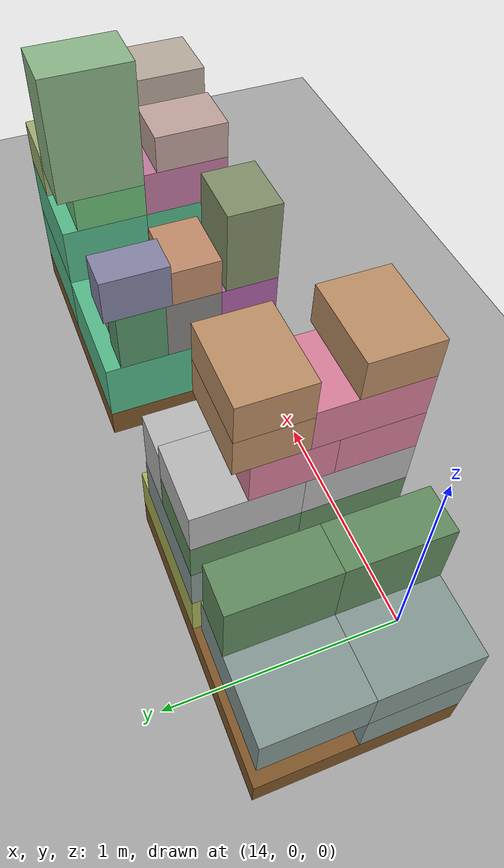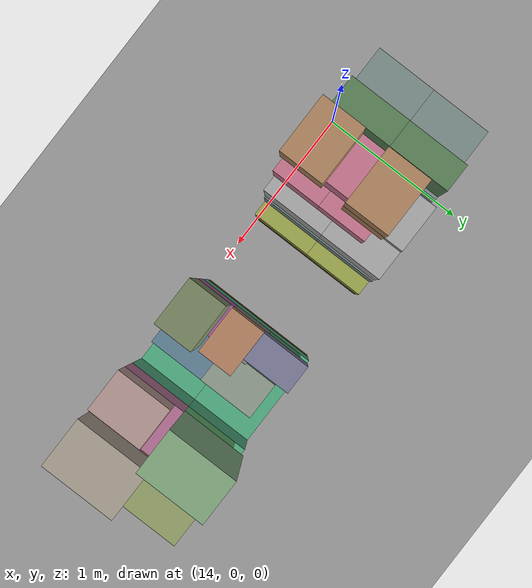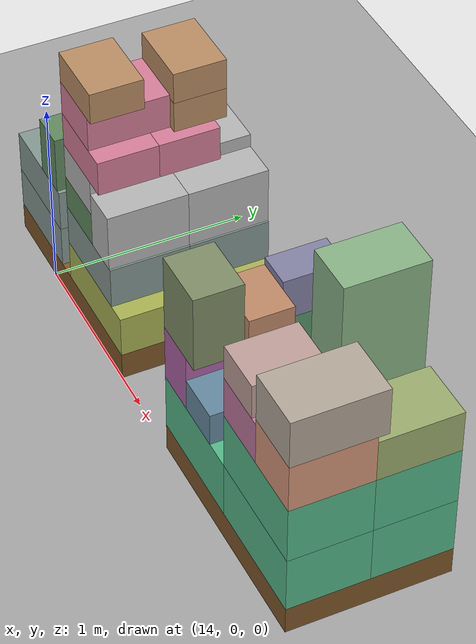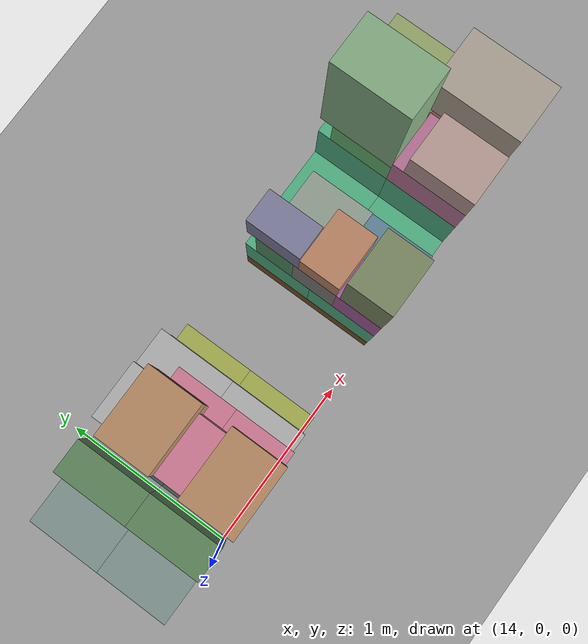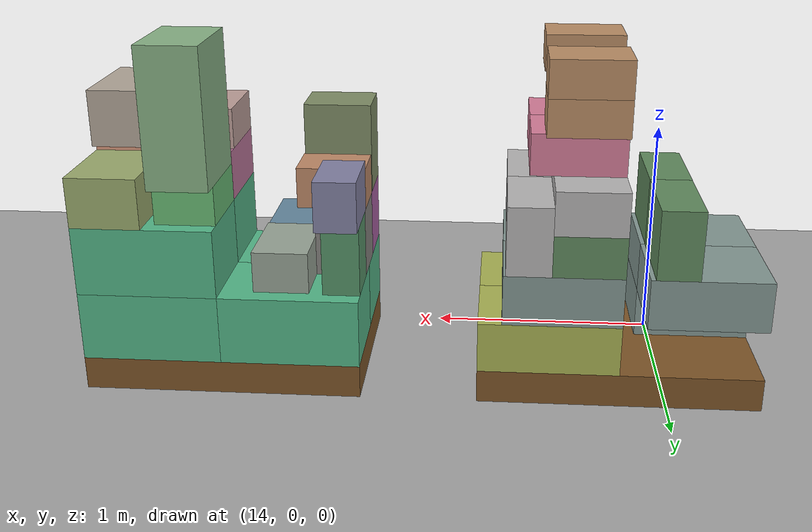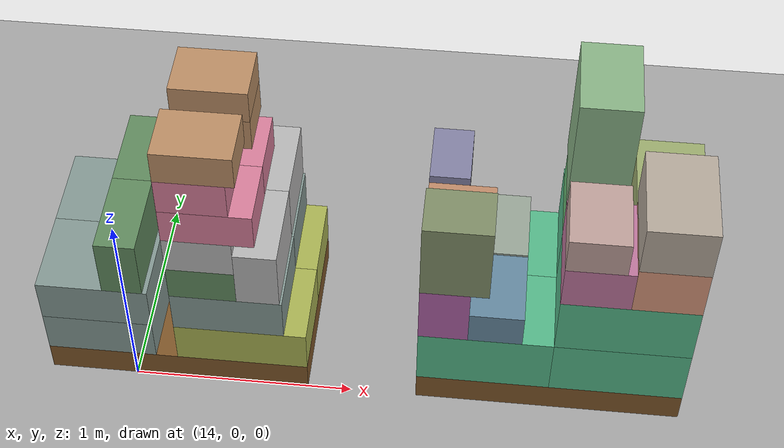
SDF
<sdf version="1.10">
 <world name="pallet_towers">
  <model name="ground_plane">
   <static>true</static>
   <link name="link">
    <collision name="collision">
     <geometry><plane><normal>0 0 1</normal><size>30 30</size></plane></geometry>
     <surface>
      <friction><ode><mu>0.35</mu><mu2>0.35</mu2></ode></friction>
      <bounce><restitution_coefficient>0</restitution_coefficient><threshold>100000</threshold></bounce>
      <contact><ode><kp>1000000</kp><kd>100</kd><max_vel>1</max_vel><min_depth>0.0005</min_depth></ode></contact>
     </surface>
    </collision>
    <visual name="visual">
     <geometry><plane><normal>0 0 1</normal><size>30 30</size></plane></geometry>
     <material><ambient>0.65 0.65 0.65 1</ambient><diffuse>0.65 0.65 0.65 1</diffuse></material>
    </visual>
   </link>
  </model>
  <model name="pallet_09_9">
   <static>false</static>
   <pose>14.2 0.4 0.072 0 0 0</pose>
   <link name="body">
    <inertial>
     <mass>25</mass>
     <inertia>
      <ixx>1.37653333</ixx>
      <ixy>0</ixy>
      <ixz>0</ixz>
      <iyy>3.0432</iyy>
      <iyz>0</iyz>
      <izz>4.33333333</izz>
     </inertia>
    </inertial>
    <collision name="collision">
     <geometry><box><size>1.2 0.8 0.144</size></box></geometry>
     <surface>
      <friction><ode><mu>0.35</mu><mu2>0.35</mu2></ode></friction>
      <bounce><restitution_coefficient>0</restitution_coefficient><threshold>100000</threshold></bounce>
      <contact><ode><kp>1000000</kp><kd>100</kd><max_vel>1</max_vel><min_depth>0.0005</min_depth></ode></contact>
     </surface>
    </collision>
    <visual name="visual">
     <geometry><box><size>1.2 0.8 0.144</size></box></geometry>
     <material>
      <ambient>0.5 0.34 0.16 1</ambient>
      <diffuse>0.5 0.34 0.16 1</diffuse>
      <specular>0.05 0.05 0.05 1</specular>
     </material>
    </visual>
   </link>
  </model>
  <model name="box_p09_0001_ORANGE_005_ORANGE">
   <static>false</static>
   <pose>14.5 0.6 0.254 0 0 0</pose>
   <link name="body">
    <inertial>
     <mass>13</mass>
     <inertia>
      <ixx>0.225766667</ixx>
      <ixy>0</ixy>
      <ixz>0</ixz>
      <iyy>0.442433333</iyy>
      <iyz>0</iyz>
      <izz>0.563333333</izz>
     </inertia>
    </inertial>
    <collision name="collision">
     <geometry><box><size>0.6 0.4 0.22</size></box></geometry>
     <surface>
      <friction><ode><mu>0.35</mu><mu2>0.35</mu2></ode></friction>
      <bounce><restitution_coefficient>0</restitution_coefficient><threshold>100000</threshold></bounce>
      <contact><ode><kp>1000000</kp><kd>100</kd><max_vel>1</max_vel><min_depth>0.0005</min_depth></ode></contact>
     </surface>
    </collision>
    <visual name="visual">
     <geometry><box><size>0.6 0.4 0.22</size></box></geometry>
     <material>
      <ambient>0.670588235 0.705882353 0.329411765 1</ambient>
      <diffuse>0.670588235 0.705882353 0.329411765 1</diffuse>
      <specular>0.05 0.05 0.05 1</specular>
     </material>
    </visual>
   </link>
  </model>
  <model name="box_p09_0002_ORANGE_006_ORANGE">
   <static>false</static>
   <pose>14.5 0.2 0.254 0 0 0</pose>
   <link name="body">
    <inertial>
     <mass>13</mass>
     <inertia>
      <ixx>0.225766667</ixx>
      <ixy>0</ixy>
      <ixz>0</ixz>
      <iyy>0.442433333</iyy>
      <iyz>0</iyz>
      <izz>0.563333333</izz>
     </inertia>
    </inertial>
    <collision name="collision">
     <geometry><box><size>0.6 0.4 0.22</size></box></geometry>
     <surface>
      <friction><ode><mu>0.35</mu><mu2>0.35</mu2></ode></friction>
      <bounce><restitution_coefficient>0</restitution_coefficient><threshold>100000</threshold></bounce>
      <contact><ode><kp>1000000</kp><kd>100</kd><max_vel>1</max_vel><min_depth>0.0005</min_depth></ode></contact>
     </surface>
    </collision>
    <visual name="visual">
     <geometry><box><size>0.6 0.4 0.22</size></box></geometry>
     <material>
      <ambient>0.670588235 0.705882353 0.329411765 1</ambient>
      <diffuse>0.670588235 0.705882353 0.329411765 1</diffuse>
      <specular>0.05 0.05 0.05 1</specular>
     </material>
    </visual>
   </link>
  </model>
  <model name="box_p09_0004_PEAR_002_PEAR">
   <static>false</static>
   <pose>13.85 0.2 0.254 0 0 0</pose>
   <link name="body">
    <inertial>
     <mass>11</mass>
     <inertia>
      <ixx>0.191033333</ixx>
      <ixy>0</ixy>
      <ixz>0</ixz>
      <iyy>0.273533333</iyy>
      <iyz>0</iyz>
      <izz>0.375833333</izz>
     </inertia>
    </inertial>
    <collision name="collision">
     <geometry><box><size>0.5 0.4 0.22</size></box></geometry>
     <surface>
      <friction><ode><mu>0.35</mu><mu2>0.35</mu2></ode></friction>
      <bounce><restitution_coefficient>0</restitution_coefficient><threshold>100000</threshold></bounce>
      <contact><ode><kp>1000000</kp><kd>100</kd><max_vel>1</max_vel><min_depth>0.0005</min_depth></ode></contact>
     </surface>
    </collision>
    <visual name="visual">
     <geometry><box><size>0.5 0.4 0.22</size></box></geometry>
     <material>
      <ambient>0.521568627 0.6 0.580392157 1</ambient>
      <diffuse>0.521568627 0.6 0.580392157 1</diffuse>
      <specular>0.05 0.05 0.05 1</specular>
     </material>
    </visual>
   </link>
  </model>
  <model name="box_p09_0005_PEAR_003_PEAR">
   <static>false</static>
   <pose>14.45 0.2 0.474 0 0 0</pose>
   <link name="body">
    <inertial>
     <mass>11</mass>
     <inertia>
      <ixx>0.191033333</ixx>
      <ixy>0</ixy>
      <ixz>0</ixz>
      <iyy>0.273533333</iyy>
      <iyz>0</iyz>
      <izz>0.375833333</izz>
     </inertia>
    </inertial>
    <collision name="collision">
     <geometry><box><size>0.5 0.4 0.22</size></box></geometry>
     <surface>
      <friction><ode><mu>0.35</mu><mu2>0.35</mu2></ode></friction>
      <bounce><restitution_coefficient>0</restitution_coefficient><threshold>100000</threshold></bounce>
      <contact><ode><kp>1000000</kp><kd>100</kd><max_vel>1</max_vel><min_depth>0.0005</min_depth></ode></contact>
     </surface>
    </collision>
    <visual name="visual">
     <geometry><box><size>0.5 0.4 0.22</size></box></geometry>
     <material>
      <ambient>0.521568627 0.6 0.580392157 1</ambient>
      <diffuse>0.521568627 0.6 0.580392157 1</diffuse>
      <specular>0.05 0.05 0.05 1</specular>
     </material>
    </visual>
   </link>
  </model>
  <model name="box_p09_0006_PEAR_004_PEAR">
   <static>false</static>
   <pose>14.45 0.6 0.474 0 0 0</pose>
   <link name="body">
    <inertial>
     <mass>11</mass>
     <inertia>
      <ixx>0.191033333</ixx>
      <ixy>0</ixy>
      <ixz>0</ixz>
      <iyy>0.273533333</iyy>
      <iyz>0</iyz>
      <izz>0.375833333</izz>
     </inertia>
    </inertial>
    <collision name="collision">
     <geometry><box><size>0.5 0.4 0.22</size></box></geometry>
     <surface>
      <friction><ode><mu>0.35</mu><mu2>0.35</mu2></ode></friction>
      <bounce><restitution_coefficient>0</restitution_coefficient><threshold>100000</threshold></bounce>
      <contact><ode><kp>1000000</kp><kd>100</kd><max_vel>1</max_vel><min_depth>0.0005</min_depth></ode></contact>
     </surface>
    </collision>
    <visual name="visual">
     <geometry><box><size>0.5 0.4 0.22</size></box></geometry>
     <material>
      <ambient>0.521568627 0.6 0.580392157 1</ambient>
      <diffuse>0.521568627 0.6 0.580392157 1</diffuse>
      <specular>0.05 0.05 0.05 1</specular>
     </material>
    </visual>
   </link>
  </model>
  <model name="box_p09_0007_PEAR_005_PEAR">
   <static>false</static>
   <pose>13.85 0.6 0.474 0 0 0</pose>
   <link name="body">
    <inertial>
     <mass>11</mass>
     <inertia>
      <ixx>0.191033333</ixx>
      <ixy>0</ixy>
      <ixz>0</ixz>
      <iyy>0.273533333</iyy>
      <iyz>0</iyz>
      <izz>0.375833333</izz>
     </inertia>
    </inertial>
    <collision name="collision">
     <geometry><box><size>0.5 0.4 0.22</size></box></geometry>
     <surface>
      <friction><ode><mu>0.35</mu><mu2>0.35</mu2></ode></friction>
      <bounce><restitution_coefficient>0</restitution_coefficient><threshold>100000</threshold></bounce>
      <contact><ode><kp>1000000</kp><kd>100</kd><max_vel>1</max_vel><min_depth>0.0005</min_depth></ode></contact>
     </surface>
    </collision>
    <visual name="visual">
     <geometry><box><size>0.5 0.4 0.22</size></box></geometry>
     <material>
      <ambient>0.521568627 0.6 0.580392157 1</ambient>
      <diffuse>0.521568627 0.6 0.580392157 1</diffuse>
      <specular>0.05 0.05 0.05 1</specular>
     </material>
    </visual>
   </link>
  </model>
  <model name="box_p09_0008_PEAR_006_PEAR">
   <static>false</static>
   <pose>13.85 0.2 0.474 0 0 0</pose>
   <link name="body">
    <inertial>
     <mass>11</mass>
     <inertia>
      <ixx>0.191033333</ixx>
      <ixy>0</ixy>
      <ixz>0</ixz>
      <iyy>0.273533333</iyy>
      <iyz>0</iyz>
      <izz>0.375833333</izz>
     </inertia>
    </inertial>
    <collision name="collision">
     <geometry><box><size>0.5 0.4 0.22</size></box></geometry>
     <surface>
      <friction><ode><mu>0.35</mu><mu2>0.35</mu2></ode></friction>
      <bounce><restitution_coefficient>0</restitution_coefficient><threshold>100000</threshold></bounce>
      <contact><ode><kp>1000000</kp><kd>100</kd><max_vel>1</max_vel><min_depth>0.0005</min_depth></ode></contact>
     </surface>
    </collision>
    <visual name="visual">
     <geometry><box><size>0.5 0.4 0.22</size></box></geometry>
     <material>
      <ambient>0.521568627 0.6 0.580392157 1</ambient>
      <diffuse>0.521568627 0.6 0.580392157 1</diffuse>
      <specular>0.05 0.05 0.05 1</specular>
     </material>
    </visual>
   </link>
  </model>
  <model name="box_p09_0009_AVOCADO_001_AVOCADO">
   <static>false</static>
   <pose>14.35 0.6 0.674 0 0 0</pose>
   <link name="body">
    <inertial>
     <mass>6.5</mass>
     <inertia>
      <ixx>0.104216667</ixx>
      <ixy>0</ixy>
      <ixz>0</ixz>
      <iyy>0.0663</iyy>
      <iyz>0</iyz>
      <izz>0.135416667</izz>
     </inertia>
    </inertial>
    <collision name="collision">
     <geometry><box><size>0.3 0.4 0.18</size></box></geometry>
     <surface>
      <friction><ode><mu>0.35</mu><mu2>0.35</mu2></ode></friction>
      <bounce><restitution_coefficient>0</restitution_coefficient><threshold>100000</threshold></bounce>
      <contact><ode><kp>1000000</kp><kd>100</kd><max_vel>1</max_vel><min_depth>0.0005</min_depth></ode></contact>
     </surface>
    </collision>
    <visual name="visual">
     <geometry><box><size>0.3 0.4 0.18</size></box></geometry>
     <material>
      <ambient>0.380392157 0.545098039 0.37254902 1</ambient>
      <diffuse>0.380392157 0.545098039 0.37254902 1</diffuse>
      <specular>0.05 0.05 0.05 1</specular>
     </material>
    </visual>
   </link>
  </model>
  <model name="box_p09_0010_AVOCADO_002_AVOCADO">
   <static>false</static>
   <pose>14.35 0.2 0.674 0 0 0</pose>
   <link name="body">
    <inertial>
     <mass>6.5</mass>
     <inertia>
      <ixx>0.104216667</ixx>
      <ixy>0</ixy>
      <ixz>0</ixz>
      <iyy>0.0663</iyy>
      <iyz>0</iyz>
      <izz>0.135416667</izz>
     </inertia>
    </inertial>
    <collision name="collision">
     <geometry><box><size>0.3 0.4 0.18</size></box></geometry>
     <surface>
      <friction><ode><mu>0.35</mu><mu2>0.35</mu2></ode></friction>
      <bounce><restitution_coefficient>0</restitution_coefficient><threshold>100000</threshold></bounce>
      <contact><ode><kp>1000000</kp><kd>100</kd><max_vel>1</max_vel><min_depth>0.0005</min_depth></ode></contact>
     </surface>
    </collision>
    <visual name="visual">
     <geometry><box><size>0.3 0.4 0.18</size></box></geometry>
     <material>
      <ambient>0.380392157 0.545098039 0.37254902 1</ambient>
      <diffuse>0.380392157 0.545098039 0.37254902 1</diffuse>
      <specular>0.05 0.05 0.05 1</specular>
     </material>
    </visual>
   </link>
  </model>
  <model name="box_p09_0013_AVOCADO_005_AVOCADO">
   <static>false</static>
   <pose>13.99 0.2 0.734 0 0 0</pose>
   <link name="body">
    <inertial>
     <mass>6.5</mass>
     <inertia>
      <ixx>0.135416667</ixx>
      <ixy>0</ixy>
      <ixz>0</ixz>
      <iyy>0.0663</iyy>
      <iyz>0</iyz>
      <izz>0.104216667</izz>
     </inertia>
    </inertial>
    <collision name="collision">
     <geometry><box><size>0.18 0.4 0.3</size></box></geometry>
     <surface>
      <friction><ode><mu>0.35</mu><mu2>0.35</mu2></ode></friction>
      <bounce><restitution_coefficient>0</restitution_coefficient><threshold>100000</threshold></bounce>
      <contact><ode><kp>1000000</kp><kd>100</kd><max_vel>1</max_vel><min_depth>0.0005</min_depth></ode></contact>
     </surface>
    </collision>
    <visual name="visual">
     <geometry><box><size>0.18 0.4 0.3</size></box></geometry>
     <material>
      <ambient>0.380392157 0.545098039 0.37254902 1</ambient>
      <diffuse>0.380392157 0.545098039 0.37254902 1</diffuse>
      <specular>0.05 0.05 0.05 1</specular>
     </material>
    </visual>
   </link>
  </model>
  <model name="box_p09_0014_AVOCADO_006_AVOCADO">
   <static>false</static>
   <pose>13.99 0.6 0.734 0 0 0</pose>
   <link name="body">
    <inertial>
     <mass>6.5</mass>
     <inertia>
      <ixx>0.135416667</ixx>
      <ixy>0</ixy>
      <ixz>0</ixz>
      <iyy>0.0663</iyy>
      <iyz>0</iyz>
      <izz>0.104216667</izz>
     </inertia>
    </inertial>
    <collision name="collision">
     <geometry><box><size>0.18 0.4 0.3</size></box></geometry>
     <surface>
      <friction><ode><mu>0.35</mu><mu2>0.35</mu2></ode></friction>
      <bounce><restitution_coefficient>0</restitution_coefficient><threshold>100000</threshold></bounce>
      <contact><ode><kp>1000000</kp><kd>100</kd><max_vel>1</max_vel><min_depth>0.0005</min_depth></ode></contact>
     </surface>
    </collision>
    <visual name="visual">
     <geometry><box><size>0.18 0.4 0.3</size></box></geometry>
     <material>
      <ambient>0.380392157 0.545098039 0.37254902 1</ambient>
      <diffuse>0.380392157 0.545098039 0.37254902 1</diffuse>
      <specular>0.05 0.05 0.05 1</specular>
     </material>
    </visual>
   </link>
  </model>
  <model name="box_p09_0015_SOUP_001_SOUP">
   <static>false</static>
   <pose>14.595 0.6 0.734 0 0 0</pose>
   <link name="body">
    <inertial>
     <mass>12</mass>
     <inertia><ixx>0.25</ixx><ixy>0</ixy><ixz>0</ixz><iyy>0.1261</iyy><iyz>0</iyz><izz>0.1961</izz></inertia>
    </inertial>
    <collision name="collision">
     <geometry><box><size>0.19 0.4 0.3</size></box></geometry>
     <surface>
      <friction><ode><mu>0.35</mu><mu2>0.35</mu2></ode></friction>
      <bounce><restitution_coefficient>0</restitution_coefficient><threshold>100000</threshold></bounce>
      <contact><ode><kp>1000000</kp><kd>100</kd><max_vel>1</max_vel><min_depth>0.0005</min_depth></ode></contact>
     </surface>
    </collision>
    <visual name="visual">
     <geometry><box><size>0.19 0.4 0.3</size></box></geometry>
     <material>
      <ambient>0.721568627 0.717647059 0.717647059 1</ambient>
      <diffuse>0.721568627 0.717647059 0.717647059 1</diffuse>
      <specular>0.05 0.05 0.05 1</specular>
     </material>
    </visual>
   </link>
  </model>
  <model name="box_p09_0016_SOUP_002_SOUP">
   <static>false</static>
   <pose>14.595 0.2 0.734 0 0 0</pose>
   <link name="body">
    <inertial>
     <mass>12</mass>
     <inertia><ixx>0.25</ixx><ixy>0</ixy><ixz>0</ixz><iyy>0.1261</iyy><iyz>0</iyz><izz>0.1961</izz></inertia>
    </inertial>
    <collision name="collision">
     <geometry><box><size>0.19 0.4 0.3</size></box></geometry>
     <surface>
      <friction><ode><mu>0.35</mu><mu2>0.35</mu2></ode></friction>
      <bounce><restitution_coefficient>0</restitution_coefficient><threshold>100000</threshold></bounce>
      <contact><ode><kp>1000000</kp><kd>100</kd><max_vel>1</max_vel><min_depth>0.0005</min_depth></ode></contact>
     </surface>
    </collision>
    <visual name="visual">
     <geometry><box><size>0.19 0.4 0.3</size></box></geometry>
     <material>
      <ambient>0.721568627 0.717647059 0.717647059 1</ambient>
      <diffuse>0.721568627 0.717647059 0.717647059 1</diffuse>
      <specular>0.05 0.05 0.05 1</specular>
     </material>
    </visual>
   </link>
  </model>
  <model name="box_p09_0017_SOUP_003_SOUP">
   <static>false</static>
   <pose>14.35 0.6 0.859 0 0 0</pose>
   <link name="body">
    <inertial>
     <mass>12</mass>
     <inertia><ixx>0.1961</ixx><ixy>0</ixy><ixz>0</ixz><iyy>0.1261</iyy><iyz>0</iyz><izz>0.25</izz></inertia>
    </inertial>
    <collision name="collision">
     <geometry><box><size>0.3 0.4 0.19</size></box></geometry>
     <surface>
      <friction><ode><mu>0.35</mu><mu2>0.35</mu2></ode></friction>
      <bounce><restitution_coefficient>0</restitution_coefficient><threshold>100000</threshold></bounce>
      <contact><ode><kp>1000000</kp><kd>100</kd><max_vel>1</max_vel><min_depth>0.0005</min_depth></ode></contact>
     </surface>
    </collision>
    <visual name="visual">
     <geometry><box><size>0.3 0.4 0.19</size></box></geometry>
     <material>
      <ambient>0.721568627 0.717647059 0.717647059 1</ambient>
      <diffuse>0.721568627 0.717647059 0.717647059 1</diffuse>
      <specular>0.05 0.05 0.05 1</specular>
     </material>
    </visual>
   </link>
  </model>
  <model name="box_p09_0018_SOUP_004_SOUP">
   <static>false</static>
   <pose>14.35 0.2 0.859 0 0 0</pose>
   <link name="body">
    <inertial>
     <mass>12</mass>
     <inertia><ixx>0.1961</ixx><ixy>0</ixy><ixz>0</ixz><iyy>0.1261</iyy><iyz>0</iyz><izz>0.25</izz></inertia>
    </inertial>
    <collision name="collision">
     <geometry><box><size>0.3 0.4 0.19</size></box></geometry>
     <surface>
      <friction><ode><mu>0.35</mu><mu2>0.35</mu2></ode></friction>
      <bounce><restitution_coefficient>0</restitution_coefficient><threshold>100000</threshold></bounce>
      <contact><ode><kp>1000000</kp><kd>100</kd><max_vel>1</max_vel><min_depth>0.0005</min_depth></ode></contact>
     </surface>
    </collision>
    <visual name="visual">
     <geometry><box><size>0.3 0.4 0.19</size></box></geometry>
     <material>
      <ambient>0.721568627 0.717647059 0.717647059 1</ambient>
      <diffuse>0.721568627 0.717647059 0.717647059 1</diffuse>
      <specular>0.05 0.05 0.05 1</specular>
     </material>
    </visual>
   </link>
  </model>
  <model name="box_p09_0023_BEANS_003_BEANS">
   <static>false</static>
   <pose>14.4 0.15 1.044 0 0 0</pose>
   <link name="body">
    <inertial>
     <mass>11</mass>
     <inertia>
      <ixx>0.1122</ixx>
      <ixy>0</ixy>
      <ixz>0</ixz>
      <iyy>0.176366667</iyy>
      <iyz>0</iyz>
      <izz>0.229166667</izz>
     </inertia>
    </inertial>
    <collision name="collision">
     <geometry><box><size>0.4 0.3 0.18</size></box></geometry>
     <surface>
      <friction><ode><mu>0.35</mu><mu2>0.35</mu2></ode></friction>
      <bounce><restitution_coefficient>0</restitution_coefficient><threshold>100000</threshold></bounce>
      <contact><ode><kp>1000000</kp><kd>100</kd><max_vel>1</max_vel><min_depth>0.0005</min_depth></ode></contact>
     </surface>
    </collision>
    <visual name="visual">
     <geometry><box><size>0.4 0.3 0.18</size></box></geometry>
     <material>
      <ambient>0.847058824 0.498039216 0.607843137 1</ambient>
      <diffuse>0.847058824 0.498039216 0.607843137 1</diffuse>
      <specular>0.05 0.05 0.05 1</specular>
     </material>
    </visual>
   </link>
  </model>
  <model name="box_p09_0024_BEANS_004_BEANS">
   <static>false</static>
   <pose>14.4 0.45 1.044 0 0 0</pose>
   <link name="body">
    <inertial>
     <mass>11</mass>
     <inertia>
      <ixx>0.1122</ixx>
      <ixy>0</ixy>
      <ixz>0</ixz>
      <iyy>0.176366667</iyy>
      <iyz>0</iyz>
      <izz>0.229166667</izz>
     </inertia>
    </inertial>
    <collision name="collision">
     <geometry><box><size>0.4 0.3 0.18</size></box></geometry>
     <surface>
      <friction><ode><mu>0.35</mu><mu2>0.35</mu2></ode></friction>
      <bounce><restitution_coefficient>0</restitution_coefficient><threshold>100000</threshold></bounce>
      <contact><ode><kp>1000000</kp><kd>100</kd><max_vel>1</max_vel><min_depth>0.0005</min_depth></ode></contact>
     </surface>
    </collision>
    <visual name="visual">
     <geometry><box><size>0.4 0.3 0.18</size></box></geometry>
     <material>
      <ambient>0.847058824 0.498039216 0.607843137 1</ambient>
      <diffuse>0.847058824 0.498039216 0.607843137 1</diffuse>
      <specular>0.05 0.05 0.05 1</specular>
     </material>
    </visual>
   </link>
  </model>
  <model name="box_p09_0026_BEANS_006_BEANS">
   <static>false</static>
   <pose>14.35 0.2 1.224 0 0 0</pose>
   <link name="body">
    <inertial>
     <mass>11</mass>
     <inertia>
      <ixx>0.176366667</ixx>
      <ixy>0</ixy>
      <ixz>0</ixz>
      <iyy>0.1122</iyy>
      <iyz>0</iyz>
      <izz>0.229166667</izz>
     </inertia>
    </inertial>
    <collision name="collision">
     <geometry><box><size>0.3 0.4 0.18</size></box></geometry>
     <surface>
      <friction><ode><mu>0.35</mu><mu2>0.35</mu2></ode></friction>
      <bounce><restitution_coefficient>0</restitution_coefficient><threshold>100000</threshold></bounce>
      <contact><ode><kp>1000000</kp><kd>100</kd><max_vel>1</max_vel><min_depth>0.0005</min_depth></ode></contact>
     </surface>
    </collision>
    <visual name="visual">
     <geometry><box><size>0.3 0.4 0.18</size></box></geometry>
     <material>
      <ambient>0.847058824 0.498039216 0.607843137 1</ambient>
      <diffuse>0.847058824 0.498039216 0.607843137 1</diffuse>
      <specular>0.05 0.05 0.05 1</specular>
     </material>
    </visual>
   </link>
  </model>
  <model name="box_p09_0027_TUNA_001_TUNA">
   <static>false</static>
   <pose>14.37 0.53 1.214 0 0 0</pose>
   <link name="body">
    <inertial>
     <mass>10</mass>
     <inertia>
      <ixx>0.0776666667</ixx>
      <ixy>0</ixy>
      <ixz>0</ixz>
      <iyy>0.117666667</iyy>
      <iyz>0</iyz>
      <izz>0.152666667</izz>
     </inertia>
    </inertial>
    <collision name="collision">
     <geometry><box><size>0.34 0.26 0.16</size></box></geometry>
     <surface>
      <friction><ode><mu>0.35</mu><mu2>0.35</mu2></ode></friction>
      <bounce><restitution_coefficient>0</restitution_coefficient><threshold>100000</threshold></bounce>
      <contact><ode><kp>1000000</kp><kd>100</kd><max_vel>1</max_vel><min_depth>0.0005</min_depth></ode></contact>
     </surface>
    </collision>
    <visual name="visual">
     <geometry><box><size>0.34 0.26 0.16</size></box></geometry>
     <material>
      <ambient>0.737254902 0.560784314 0.4 1</ambient>
      <diffuse>0.737254902 0.560784314 0.4 1</diffuse>
      <specular>0.05 0.05 0.05 1</specular>
     </material>
    </visual>
   </link>
  </model>
  <model name="box_p09_0029_TUNA_003_TUNA">
   <static>false</static>
   <pose>14.37 0.53 1.374 0 0 0</pose>
   <link name="body">
    <inertial>
     <mass>10</mass>
     <inertia>
      <ixx>0.0776666667</ixx>
      <ixy>0</ixy>
      <ixz>0</ixz>
      <iyy>0.117666667</iyy>
      <iyz>0</iyz>
      <izz>0.152666667</izz>
     </inertia>
    </inertial>
    <collision name="collision">
     <geometry><box><size>0.34 0.26 0.16</size></box></geometry>
     <surface>
      <friction><ode><mu>0.35</mu><mu2>0.35</mu2></ode></friction>
      <bounce><restitution_coefficient>0</restitution_coefficient><threshold>100000</threshold></bounce>
      <contact><ode><kp>1000000</kp><kd>100</kd><max_vel>1</max_vel><min_depth>0.0005</min_depth></ode></contact>
     </surface>
    </collision>
    <visual name="visual">
     <geometry><box><size>0.34 0.26 0.16</size></box></geometry>
     <material>
      <ambient>0.737254902 0.560784314 0.4 1</ambient>
      <diffuse>0.737254902 0.560784314 0.4 1</diffuse>
      <specular>0.05 0.05 0.05 1</specular>
     </material>
    </visual>
   </link>
  </model>
  <model name="box_p09_0032_TUNA_006_TUNA">
   <static>false</static>
   <pose>14.37 0.13 1.394 0 0 0</pose>
   <link name="body">
    <inertial>
     <mass>10</mass>
     <inertia>
      <ixx>0.0776666667</ixx>
      <ixy>0</ixy>
      <ixz>0</ixz>
      <iyy>0.117666667</iyy>
      <iyz>0</iyz>
      <izz>0.152666667</izz>
     </inertia>
    </inertial>
    <collision name="collision">
     <geometry><box><size>0.34 0.26 0.16</size></box></geometry>
     <surface>
      <friction><ode><mu>0.35</mu><mu2>0.35</mu2></ode></friction>
      <bounce><restitution_coefficient>0</restitution_coefficient><threshold>100000</threshold></bounce>
      <contact><ode><kp>1000000</kp><kd>100</kd><max_vel>1</max_vel><min_depth>0.0005</min_depth></ode></contact>
     </surface>
    </collision>
    <visual name="visual">
     <geometry><box><size>0.34 0.26 0.16</size></box></geometry>
     <material>
      <ambient>0.737254902 0.560784314 0.4 1</ambient>
      <diffuse>0.737254902 0.560784314 0.4 1</diffuse>
      <specular>0.05 0.05 0.05 1</specular>
     </material>
    </visual>
   </link>
  </model>
  <model name="pallet_10_10">
   <static>false</static>
   <pose>15.9 0.4 0.072 0 0 0</pose>
   <link name="body">
    <inertial>
     <mass>25</mass>
     <inertia>
      <ixx>1.37653333</ixx>
      <ixy>0</ixy>
      <ixz>0</ixz>
      <iyy>3.0432</iyy>
      <iyz>0</iyz>
      <izz>4.33333333</izz>
     </inertia>
    </inertial>
    <collision name="collision">
     <geometry><box><size>1.2 0.8 0.144</size></box></geometry>
     <surface>
      <friction><ode><mu>0.35</mu><mu2>0.35</mu2></ode></friction>
      <bounce><restitution_coefficient>0</restitution_coefficient><threshold>100000</threshold></bounce>
      <contact><ode><kp>1000000</kp><kd>100</kd><max_vel>1</max_vel><min_depth>0.0005</min_depth></ode></contact>
     </surface>
    </collision>
    <visual name="visual">
     <geometry><box><size>1.2 0.8 0.144</size></box></geometry>
     <material>
      <ambient>0.5 0.34 0.16 1</ambient>
      <diffuse>0.5 0.34 0.16 1</diffuse>
      <specular>0.05 0.05 0.05 1</specular>
     </material>
    </visual>
   </link>
  </model>
  <model name="box_p10_0001_PAPER_001_PAPER">
   <static>false</static>
   <pose>16.2 0.6 0.294 0 0 0</pose>
   <link name="body">
    <inertial>
     <mass>5.5</mass>
     <inertia>
      <ixx>0.114583333</ixx>
      <ixy>0</ixy>
      <ixz>0</ixz>
      <iyy>0.20625</iyy>
      <iyz>0</iyz>
      <izz>0.238333333</izz>
     </inertia>
    </inertial>
    <collision name="collision">
     <geometry><box><size>0.6 0.4 0.3</size></box></geometry>
     <surface>
      <friction><ode><mu>0.35</mu><mu2>0.35</mu2></ode></friction>
      <bounce><restitution_coefficient>0</restitution_coefficient><threshold>100000</threshold></bounce>
      <contact><ode><kp>1000000</kp><kd>100</kd><max_vel>1</max_vel><min_depth>0.0005</min_depth></ode></contact>
     </surface>
    </collision>
    <visual name="visual">
     <geometry><box><size>0.6 0.4 0.3</size></box></geometry>
     <material>
      <ambient>0.333333333 0.725490196 0.541176471 1</ambient>
      <diffuse>0.333333333 0.725490196 0.541176471 1</diffuse>
      <specular>0.05 0.05 0.05 1</specular>
     </material>
    </visual>
   </link>
  </model>
  <model name="box_p10_0002_PAPER_002_PAPER">
   <static>false</static>
   <pose>16.2 0.2 0.294 0 0 0</pose>
   <link name="body">
    <inertial>
     <mass>5.5</mass>
     <inertia>
      <ixx>0.114583333</ixx>
      <ixy>0</ixy>
      <ixz>0</ixz>
      <iyy>0.20625</iyy>
      <iyz>0</iyz>
      <izz>0.238333333</izz>
     </inertia>
    </inertial>
    <collision name="collision">
     <geometry><box><size>0.6 0.4 0.3</size></box></geometry>
     <surface>
      <friction><ode><mu>0.35</mu><mu2>0.35</mu2></ode></friction>
      <bounce><restitution_coefficient>0</restitution_coefficient><threshold>100000</threshold></bounce>
      <contact><ode><kp>1000000</kp><kd>100</kd><max_vel>1</max_vel><min_depth>0.0005</min_depth></ode></contact>
     </surface>
    </collision>
    <visual name="visual">
     <geometry><box><size>0.6 0.4 0.3</size></box></geometry>
     <material>
      <ambient>0.333333333 0.725490196 0.541176471 1</ambient>
      <diffuse>0.333333333 0.725490196 0.541176471 1</diffuse>
      <specular>0.05 0.05 0.05 1</specular>
     </material>
    </visual>
   </link>
  </model>
  <model name="box_p10_0003_PAPER_003_PAPER">
   <static>false</static>
   <pose>15.6 0.6 0.294 0 0 0</pose>
   <link name="body">
    <inertial>
     <mass>5.5</mass>
     <inertia>
      <ixx>0.114583333</ixx>
      <ixy>0</ixy>
      <ixz>0</ixz>
      <iyy>0.20625</iyy>
      <iyz>0</iyz>
      <izz>0.238333333</izz>
     </inertia>
    </inertial>
    <collision name="collision">
     <geometry><box><size>0.6 0.4 0.3</size></box></geometry>
     <surface>
      <friction><ode><mu>0.35</mu><mu2>0.35</mu2></ode></friction>
      <bounce><restitution_coefficient>0</restitution_coefficient><threshold>100000</threshold></bounce>
      <contact><ode><kp>1000000</kp><kd>100</kd><max_vel>1</max_vel><min_depth>0.0005</min_depth></ode></contact>
     </surface>
    </collision>
    <visual name="visual">
     <geometry><box><size>0.6 0.4 0.3</size></box></geometry>
     <material>
      <ambient>0.333333333 0.725490196 0.541176471 1</ambient>
      <diffuse>0.333333333 0.725490196 0.541176471 1</diffuse>
      <specular>0.05 0.05 0.05 1</specular>
     </material>
    </visual>
   </link>
  </model>
  <model name="box_p10_0004_PAPER_004_PAPER">
   <static>false</static>
   <pose>15.6 0.2 0.294 0 0 0</pose>
   <link name="body">
    <inertial>
     <mass>5.5</mass>
     <inertia>
      <ixx>0.114583333</ixx>
      <ixy>0</ixy>
      <ixz>0</ixz>
      <iyy>0.20625</iyy>
      <iyz>0</iyz>
      <izz>0.238333333</izz>
     </inertia>
    </inertial>
    <collision name="collision">
     <geometry><box><size>0.6 0.4 0.3</size></box></geometry>
     <surface>
      <friction><ode><mu>0.35</mu><mu2>0.35</mu2></ode></friction>
      <bounce><restitution_coefficient>0</restitution_coefficient><threshold>100000</threshold></bounce>
      <contact><ode><kp>1000000</kp><kd>100</kd><max_vel>1</max_vel><min_depth>0.0005</min_depth></ode></contact>
     </surface>
    </collision>
    <visual name="visual">
     <geometry><box><size>0.6 0.4 0.3</size></box></geometry>
     <material>
      <ambient>0.333333333 0.725490196 0.541176471 1</ambient>
      <diffuse>0.333333333 0.725490196 0.541176471 1</diffuse>
      <specular>0.05 0.05 0.05 1</specular>
     </material>
    </visual>
   </link>
  </model>
  <model name="box_p10_0005_PAPER_005_PAPER">
   <static>false</static>
   <pose>16.2 0.2 0.594 0 0 0</pose>
   <link name="body">
    <inertial>
     <mass>5.5</mass>
     <inertia>
      <ixx>0.114583333</ixx>
      <ixy>0</ixy>
      <ixz>0</ixz>
      <iyy>0.20625</iyy>
      <iyz>0</iyz>
      <izz>0.238333333</izz>
     </inertia>
    </inertial>
    <collision name="collision">
     <geometry><box><size>0.6 0.4 0.3</size></box></geometry>
     <surface>
      <friction><ode><mu>0.35</mu><mu2>0.35</mu2></ode></friction>
      <bounce><restitution_coefficient>0</restitution_coefficient><threshold>100000</threshold></bounce>
      <contact><ode><kp>1000000</kp><kd>100</kd><max_vel>1</max_vel><min_depth>0.0005</min_depth></ode></contact>
     </surface>
    </collision>
    <visual name="visual">
     <geometry><box><size>0.6 0.4 0.3</size></box></geometry>
     <material>
      <ambient>0.333333333 0.725490196 0.541176471 1</ambient>
      <diffuse>0.333333333 0.725490196 0.541176471 1</diffuse>
      <specular>0.05 0.05 0.05 1</specular>
     </material>
    </visual>
   </link>
  </model>
  <model name="box_p10_0006_PAPER_006_PAPER">
   <static>false</static>
   <pose>16.2 0.6 0.594 0 0 0</pose>
   <link name="body">
    <inertial>
     <mass>5.5</mass>
     <inertia>
      <ixx>0.114583333</ixx>
      <ixy>0</ixy>
      <ixz>0</ixz>
      <iyy>0.20625</iyy>
      <iyz>0</iyz>
      <izz>0.238333333</izz>
     </inertia>
    </inertial>
    <collision name="collision">
     <geometry><box><size>0.6 0.4 0.3</size></box></geometry>
     <surface>
      <friction><ode><mu>0.35</mu><mu2>0.35</mu2></ode></friction>
      <bounce><restitution_coefficient>0</restitution_coefficient><threshold>100000</threshold></bounce>
      <contact><ode><kp>1000000</kp><kd>100</kd><max_vel>1</max_vel><min_depth>0.0005</min_depth></ode></contact>
     </surface>
    </collision>
    <visual name="visual">
     <geometry><box><size>0.6 0.4 0.3</size></box></geometry>
     <material>
      <ambient>0.333333333 0.725490196 0.541176471 1</ambient>
      <diffuse>0.333333333 0.725490196 0.541176471 1</diffuse>
      <specular>0.05 0.05 0.05 1</specular>
     </material>
    </visual>
   </link>
  </model>
  <model name="box_p10_0007_OLIVEOIL_001_OLIVEOIL">
   <static>false</static>
   <pose>15.41 0.13 0.594 0 0 0</pose>
   <link name="body">
    <inertial>
     <mass>9</mass>
     <inertia><ixx>0.1182</ixx><ixy>0</ixy><ixz>0</ixz><iyy>0.1038</iyy><iyz>0</iyz><izz>0.087</izz></inertia>
    </inertial>
    <collision name="collision">
     <geometry><box><size>0.22 0.26 0.3</size></box></geometry>
     <surface>
      <friction><ode><mu>0.35</mu><mu2>0.35</mu2></ode></friction>
      <bounce><restitution_coefficient>0</restitution_coefficient><threshold>100000</threshold></bounce>
      <contact><ode><kp>1000000</kp><kd>100</kd><max_vel>1</max_vel><min_depth>0.0005</min_depth></ode></contact>
     </surface>
    </collision>
    <visual name="visual">
     <geometry><box><size>0.22 0.26 0.3</size></box></geometry>
     <material>
      <ambient>0.682352941 0.384313725 0.650980392 1</ambient>
      <diffuse>0.682352941 0.384313725 0.650980392 1</diffuse>
      <specular>0.05 0.05 0.05 1</specular>
     </material>
    </visual>
   </link>
  </model>
  <model name="box_p10_0008_VINEGAR_001_VINEGAR">
   <static>false</static>
   <pose>15.41 0.385 0.594 0 0 0</pose>
   <link name="body">
    <inertial>
     <mass>8</mass>
     <inertia>
      <ixx>0.101666667</ixx>
      <ixy>0</ixy>
      <ixz>0</ixz>
      <iyy>0.0922666667</iyy>
      <iyz>0</iyz>
      <izz>0.0739333333</izz>
     </inertia>
    </inertial>
    <collision name="collision">
     <geometry><box><size>0.22 0.25 0.3</size></box></geometry>
     <surface>
      <friction><ode><mu>0.35</mu><mu2>0.35</mu2></ode></friction>
      <bounce><restitution_coefficient>0</restitution_coefficient><threshold>100000</threshold></bounce>
      <contact><ode><kp>1000000</kp><kd>100</kd><max_vel>1</max_vel><min_depth>0.0005</min_depth></ode></contact>
     </surface>
    </collision>
    <visual name="visual">
     <geometry><box><size>0.22 0.25 0.3</size></box></geometry>
     <material>
      <ambient>0.529411765 0.517647059 0.505882353 1</ambient>
      <diffuse>0.529411765 0.517647059 0.505882353 1</diffuse>
      <specular>0.05 0.05 0.05 1</specular>
     </material>
    </visual>
   </link>
  </model>
  <model name="box_p10_0009_MAYO_001_MAYO">
   <static>false</static>
   <pose>15.64 0.18 0.529 0 0 0</pose>
   <link name="body">
    <inertial>
     <mass>7</mass>
     <inertia>
      <ixx>0.0924583333</ixx>
      <ixy>0</ixy>
      <ixz>0</ixz>
      <iyy>0.0504583333</iyy>
      <iyz>0</iyz>
      <izz>0.1092</izz>
     </inertia>
    </inertial>
    <collision name="collision">
     <geometry><box><size>0.24 0.36 0.17</size></box></geometry>
     <surface>
      <friction><ode><mu>0.35</mu><mu2>0.35</mu2></ode></friction>
      <bounce><restitution_coefficient>0</restitution_coefficient><threshold>100000</threshold></bounce>
      <contact><ode><kp>1000000</kp><kd>100</kd><max_vel>1</max_vel><min_depth>0.0005</min_depth></ode></contact>
     </surface>
    </collision>
    <visual name="visual">
     <geometry><box><size>0.24 0.36 0.17</size></box></geometry>
     <material>
      <ambient>0.4 0.541176471 0.631372549 1</ambient>
      <diffuse>0.4 0.541176471 0.631372549 1</diffuse>
      <specular>0.05 0.05 0.05 1</specular>
     </material>
    </visual>
   </link>
  </model>
  <model name="box_p10_0010_KETCHUP_001_KETCHUP">
   <static>false</static>
   <pose>15.64 0.54 0.534 0 0 0</pose>
   <link name="body">
    <inertial>
     <mass>8.5</mass>
     <inertia><ixx>0.11475</ixx><ixy>0</ixy><ixz>0</ixz><iyy>0.06375</iyy><iyz>0</iyz><izz>0.1326</izz></inertia>
    </inertial>
    <collision name="collision">
     <geometry><box><size>0.24 0.36 0.18</size></box></geometry>
     <surface>
      <friction><ode><mu>0.35</mu><mu2>0.35</mu2></ode></friction>
      <bounce><restitution_coefficient>0</restitution_coefficient><threshold>100000</threshold></bounce>
      <contact><ode><kp>1000000</kp><kd>100</kd><max_vel>1</max_vel><min_depth>0.0005</min_depth></ode></contact>
     </surface>
    </collision>
    <visual name="visual">
     <geometry><box><size>0.24 0.36 0.18</size></box></geometry>
     <material>
      <ambient>0.6 0.650980392 0.596078431 1</ambient>
      <diffuse>0.6 0.650980392 0.596078431 1</diffuse>
      <specular>0.05 0.05 0.05 1</specular>
     </material>
    </visual>
   </link>
  </model>
  <model name="box_p10_0011_SPICES_001_SPICES">
   <static>false</static>
   <pose>15.38 0.62 0.594 0 0 0</pose>
   <link name="body">
    <inertial>
     <mass>4</mass>
     <inertia>
      <ixx>0.0461333333</ixx>
      <ixy>0</ixy>
      <ixz>0</ixz>
      <iyy>0.0385333333</iyy>
      <iyz>0</iyz>
      <izz>0.0246666667</izz>
     </inertia>
    </inertial>
    <collision name="collision">
     <geometry><box><size>0.16 0.22 0.3</size></box></geometry>
     <surface>
      <friction><ode><mu>0.35</mu><mu2>0.35</mu2></ode></friction>
      <bounce><restitution_coefficient>0</restitution_coefficient><threshold>100000</threshold></bounce>
      <contact><ode><kp>1000000</kp><kd>100</kd><max_vel>1</max_vel><min_depth>0.0005</min_depth></ode></contact>
     </surface>
    </collision>
    <visual name="visual">
     <geometry><box><size>0.16 0.22 0.3</size></box></geometry>
     <material>
      <ambient>0.341176471 0.584313725 0.411764706 1</ambient>
      <diffuse>0.341176471 0.584313725 0.411764706 1</diffuse>
      <specular>0.05 0.05 0.05 1</specular>
     </material>
    </visual>
   </link>
  </model>
  <model name="box_p10_0012_NUTS_001_NUTS">
   <static>false</static>
   <pose>15.45 0.37 0.834 0 0 0</pose>
   <link name="body">
    <inertial>
     <mass>5.5</mass>
     <inertia>
      <ixx>0.0370333333</ixx>
      <ixy>0</ixy>
      <ixz>0</ixz>
      <iyy>0.0561</iyy>
      <iyz>0</iyz>
      <izz>0.0634333333</izz>
     </inertia>
    </inertial>
    <collision name="collision">
     <geometry><box><size>0.3 0.22 0.18</size></box></geometry>
     <surface>
      <friction><ode><mu>0.35</mu><mu2>0.35</mu2></ode></friction>
      <bounce><restitution_coefficient>0</restitution_coefficient><threshold>100000</threshold></bounce>
      <contact><ode><kp>1000000</kp><kd>100</kd><max_vel>1</max_vel><min_depth>0.0005</min_depth></ode></contact>
     </surface>
    </collision>
    <visual name="visual">
     <geometry><box><size>0.3 0.22 0.18</size></box></geometry>
     <material>
      <ambient>0.756862745 0.545098039 0.411764706 1</ambient>
      <diffuse>0.756862745 0.545098039 0.411764706 1</diffuse>
      <specular>0.05 0.05 0.05 1</specular>
     </material>
    </visual>
   </link>
  </model>
  <model name="box_p10_0013_JAM_001_JAM">
   <static>false</static>
   <pose>16.03 0.565 0.829 0 0 0</pose>
   <link name="body">
    <inertial>
     <mass>8</mass>
     <inertia>
      <ixx>0.0918666667</ixx>
      <ixy>0</ixy>
      <ixz>0</ixz>
      <iyy>0.0643333333</iyy>
      <iyz>0</iyz>
      <izz>0.117666667</izz>
     </inertia>
    </inertial>
    <collision name="collision">
     <geometry><box><size>0.26 0.33 0.17</size></box></geometry>
     <surface>
      <friction><ode><mu>0.35</mu><mu2>0.35</mu2></ode></friction>
      <bounce><restitution_coefficient>0</restitution_coefficient><threshold>100000</threshold></bounce>
      <contact><ode><kp>1000000</kp><kd>100</kd><max_vel>1</max_vel><min_depth>0.0005</min_depth></ode></contact>
     </surface>
    </collision>
    <visual name="visual">
     <geometry><box><size>0.26 0.33 0.17</size></box></geometry>
     <material>
      <ambient>0.415686275 0.745098039 0.462745098 1</ambient>
      <diffuse>0.415686275 0.745098039 0.462745098 1</diffuse>
      <specular>0.05 0.05 0.05 1</specular>
     </material>
    </visual>
   </link>
  </model>
  <model name="box_p10_0014_CANDY_001_CANDY">
   <static>false</static>
   <pose>16.05 0.2 0.854 0 0 0</pose>
   <link name="body">
    <inertial>
     <mass>5</mass>
     <inertia>
      <ixx>0.0868333333</ixx>
      <ixy>0</ixy>
      <ixz>0</ixz>
      <iyy>0.0576666667</iyy>
      <iyz>0</iyz>
      <izz>0.104166667</izz>
     </inertia>
    </inertial>
    <collision name="collision">
     <geometry><box><size>0.3 0.4 0.22</size></box></geometry>
     <surface>
      <friction><ode><mu>0.35</mu><mu2>0.35</mu2></ode></friction>
      <bounce><restitution_coefficient>0</restitution_coefficient><threshold>100000</threshold></bounce>
      <contact><ode><kp>1000000</kp><kd>100</kd><max_vel>1</max_vel><min_depth>0.0005</min_depth></ode></contact>
     </surface>
    </collision>
    <visual name="visual">
     <geometry><box><size>0.3 0.4 0.22</size></box></geometry>
     <material>
      <ambient>0.752941176 0.466666667 0.619607843 1</ambient>
      <diffuse>0.752941176 0.466666667 0.619607843 1</diffuse>
      <specular>0.05 0.05 0.05 1</specular>
     </material>
    </visual>
   </link>
  </model>
  <model name="box_p10_0015_BISCUIT_001_BISCUIT">
   <static>false</static>
   <pose>16.35 0.2 0.869 0 0 0</pose>
   <link name="body">
    <inertial>
     <mass>4.5</mass>
     <inertia>
      <ixx>0.0834375</ixx>
      <ixy>0</ixy>
      <ixz>0</ixz>
      <iyy>0.0571875</iyy>
      <iyz>0</iyz>
      <izz>0.09375</izz>
     </inertia>
    </inertial>
    <collision name="collision">
     <geometry><box><size>0.3 0.4 0.25</size></box></geometry>
     <surface>
      <friction><ode><mu>0.35</mu><mu2>0.35</mu2></ode></friction>
      <bounce><restitution_coefficient>0</restitution_coefficient><threshold>100000</threshold></bounce>
      <contact><ode><kp>1000000</kp><kd>100</kd><max_vel>1</max_vel><min_depth>0.0005</min_depth></ode></contact>
     </surface>
    </collision>
    <visual name="visual">
     <geometry><box><size>0.3 0.4 0.25</size></box></geometry>
     <material>
      <ambient>0.847058824 0.596078431 0.482352941 1</ambient>
      <diffuse>0.847058824 0.596078431 0.482352941 1</diffuse>
      <specular>0.05 0.05 0.05 1</specular>
     </material>
    </visual>
   </link>
  </model>
  <model name="box_p10_0016_SOAP_001_SOAP">
   <static>false</static>
   <pose>16.35 0.6 0.854 0 0 0</pose>
   <link name="body">
    <inertial>
     <mass>6</mass>
     <inertia><ixx>0.1042</ixx><ixy>0</ixy><ixz>0</ixz><iyy>0.0692</iyy><iyz>0</iyz><izz>0.125</izz></inertia>
    </inertial>
    <collision name="collision">
     <geometry><box><size>0.3 0.4 0.22</size></box></geometry>
     <surface>
      <friction><ode><mu>0.35</mu><mu2>0.35</mu2></ode></friction>
      <bounce><restitution_coefficient>0</restitution_coefficient><threshold>100000</threshold></bounce>
      <contact><ode><kp>1000000</kp><kd>100</kd><max_vel>1</max_vel><min_depth>0.0005</min_depth></ode></contact>
     </surface>
    </collision>
    <visual name="visual">
     <geometry><box><size>0.3 0.4 0.22</size></box></geometry>
     <material>
      <ambient>0.615686275 0.678431373 0.435294118 1</ambient>
      <diffuse>0.615686275 0.678431373 0.435294118 1</diffuse>
      <specular>0.05 0.05 0.05 1</specular>
     </material>
    </visual>
   </link>
  </model>
  <model name="box_p10_0017_SHAMPOO_001_SHAMPOO">
   <static>false</static>
   <pose>15.45 0.12 0.944 0 0 0</pose>
   <link name="body">
    <inertial>
     <mass>8</mass>
     <inertia>
      <ixx>0.145066667</ixx>
      <ixy>0</ixy>
      <ixz>0</ixz>
      <iyy>0.166666667</iyy>
      <iyz>0</iyz>
      <izz>0.0984</izz>
     </inertia>
    </inertial>
    <collision name="collision">
     <geometry><box><size>0.3 0.24 0.4</size></box></geometry>
     <surface>
      <friction><ode><mu>0.35</mu><mu2>0.35</mu2></ode></friction>
      <bounce><restitution_coefficient>0</restitution_coefficient><threshold>100000</threshold></bounce>
      <contact><ode><kp>1000000</kp><kd>100</kd><max_vel>1</max_vel><min_depth>0.0005</min_depth></ode></contact>
     </surface>
    </collision>
    <visual name="visual">
     <geometry><box><size>0.3 0.24 0.4</size></box></geometry>
     <material>
      <ambient>0.505882353 0.560784314 0.407843137 1</ambient>
      <diffuse>0.505882353 0.560784314 0.407843137 1</diffuse>
      <specular>0.05 0.05 0.05 1</specular>
     </material>
    </visual>
   </link>
  </model>
  <model name="box_p10_0018_TOOTHP_001_TOOTHP">
   <static>false</static>
   <pose>15.39 0.63 0.854 0 0 0</pose>
   <link name="body">
    <inertial>
     <mass>4.5</mass>
     <inertia><ixx>0.0519</ixx><ixy>0</ixy><ixz>0</ixz><iyy>0.0303</iyy><iyz>0</iyz><izz>0.0459</izz></inertia>
    </inertial>
    <collision name="collision">
     <geometry><box><size>0.18 0.3 0.22</size></box></geometry>
     <surface>
      <friction><ode><mu>0.35</mu><mu2>0.35</mu2></ode></friction>
      <bounce><restitution_coefficient>0</restitution_coefficient><threshold>100000</threshold></bounce>
      <contact><ode><kp>1000000</kp><kd>100</kd><max_vel>1</max_vel><min_depth>0.0005</min_depth></ode></contact>
     </surface>
    </collision>
    <visual name="visual">
     <geometry><box><size>0.18 0.3 0.22</size></box></geometry>
     <material>
      <ambient>0.517647059 0.51372549 0.647058824 1</ambient>
      <diffuse>0.517647059 0.51372549 0.647058824 1</diffuse>
      <specular>0.05 0.05 0.05 1</specular>
     </material>
    </visual>
   </link>
  </model>
  <model name="box_p10_0019_NAPKINS_001_NAPKINS">
   <static>false</static>
   <pose>16.03 0.6 1.214 0 0 0</pose>
   <link name="body">
    <inertial>
     <mass>3</mass>
     <inertia><ixx>0.13</ixx><ixy>0</ixy><ixz>0</ixz><iyy>0.1069</iyy><iyz>0</iyz><izz>0.0569</izz></inertia>
    </inertial>
    <collision name="collision">
     <geometry><box><size>0.26 0.4 0.6</size></box></geometry>
     <surface>
      <friction><ode><mu>0.35</mu><mu2>0.35</mu2></ode></friction>
      <bounce><restitution_coefficient>0</restitution_coefficient><threshold>100000</threshold></bounce>
      <contact><ode><kp>1000000</kp><kd>100</kd><max_vel>1</max_vel><min_depth>0.0005</min_depth></ode></contact>
     </surface>
    </collision>
    <visual name="visual">
     <geometry><box><size>0.26 0.4 0.6</size></box></geometry>
     <material>
      <ambient>0.541176471 0.705882353 0.529411765 1</ambient>
      <diffuse>0.541176471 0.705882353 0.529411765 1</diffuse>
      <specular>0.05 0.05 0.05 1</specular>
     </material>
    </visual>
   </link>
  </model>
  <model name="box_p10_0020_PETLIT_001_PETLIT">
   <static>false</static>
   <pose>16.35 0.225 1.119 0 0 0</pose>
   <link name="body">
    <inertial>
     <mass>14</mass>
     <inertia>
      <ixx>0.309166667</ixx>
      <ixy>0</ixy>
      <ixz>0</ixz>
      <iyy>0.177916667</iyy>
      <iyz>0</iyz>
      <izz>0.34125</izz>
     </inertia>
    </inertial>
    <collision name="collision">
     <geometry><box><size>0.3 0.45 0.25</size></box></geometry>
     <surface>
      <friction><ode><mu>0.35</mu><mu2>0.35</mu2></ode></friction>
      <bounce><restitution_coefficient>0</restitution_coefficient><threshold>100000</threshold></bounce>
      <contact><ode><kp>1000000</kp><kd>100</kd><max_vel>1</max_vel><min_depth>0.0005</min_depth></ode></contact>
     </surface>
    </collision>
    <visual name="visual">
     <geometry><box><size>0.3 0.45 0.25</size></box></geometry>
     <material>
      <ambient>0.709803922 0.662745098 0.607843137 1</ambient>
      <diffuse>0.709803922 0.662745098 0.607843137 1</diffuse>
      <specular>0.05 0.05 0.05 1</specular>
     </material>
    </visual>
   </link>
  </model>
  <model name="box_p10_0021_BABYFOOD_001_BABYFOOD">
   <static>false</static>
   <pose>16.03 0.17 1.054 0 0 0</pose>
   <link name="body">
    <inertial>
     <mass>9</mass>
     <inertia><ixx>0.111</ixx><ixy>0</ixy><ixz>0</ixz><iyy>0.075</iyy><iyz>0</iyz><izz>0.1374</izz></inertia>
    </inertial>
    <collision name="collision">
     <geometry><box><size>0.26 0.34 0.18</size></box></geometry>
     <surface>
      <friction><ode><mu>0.35</mu><mu2>0.35</mu2></ode></friction>
      <bounce><restitution_coefficient>0</restitution_coefficient><threshold>100000</threshold></bounce>
      <contact><ode><kp>1000000</kp><kd>100</kd><max_vel>1</max_vel><min_depth>0.0005</min_depth></ode></contact>
     </surface>
    </collision>
    <visual name="visual">
     <geometry><box><size>0.26 0.34 0.18</size></box></geometry>
     <material>
      <ambient>0.752941176 0.631372549 0.607843137 1</ambient>
      <diffuse>0.752941176 0.631372549 0.607843137 1</diffuse>
      <specular>0.05 0.05 0.05 1</specular>
     </material>
    </visual>
   </link>
  </model>
 </world>
</sdf>
